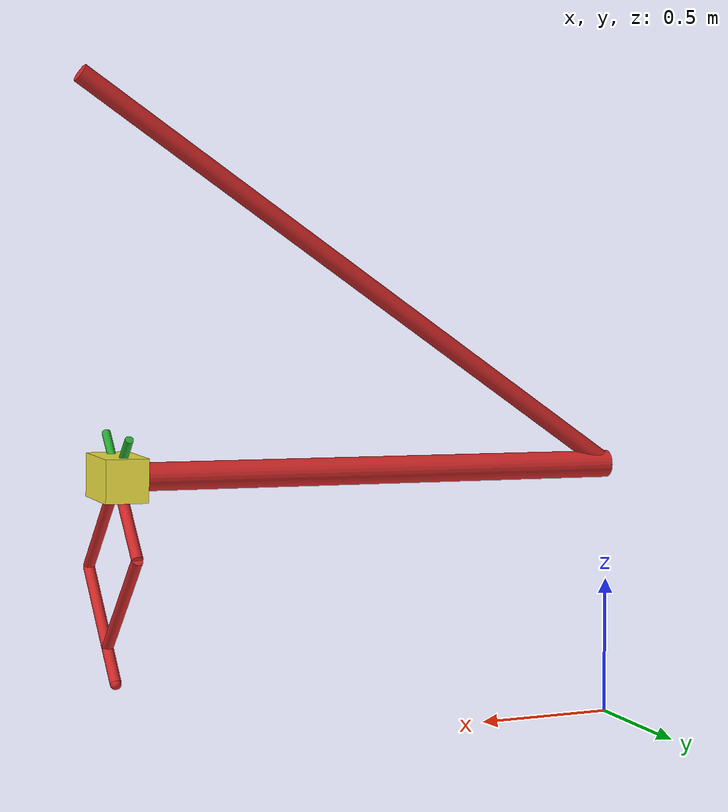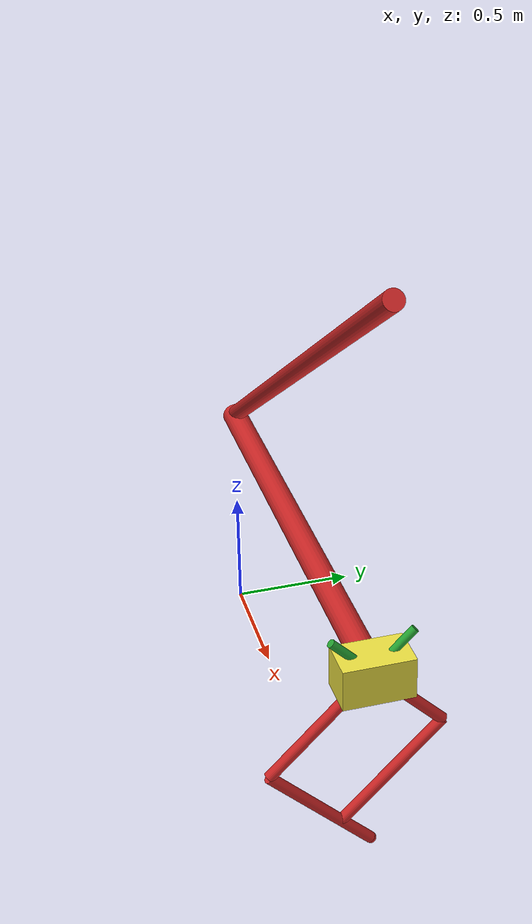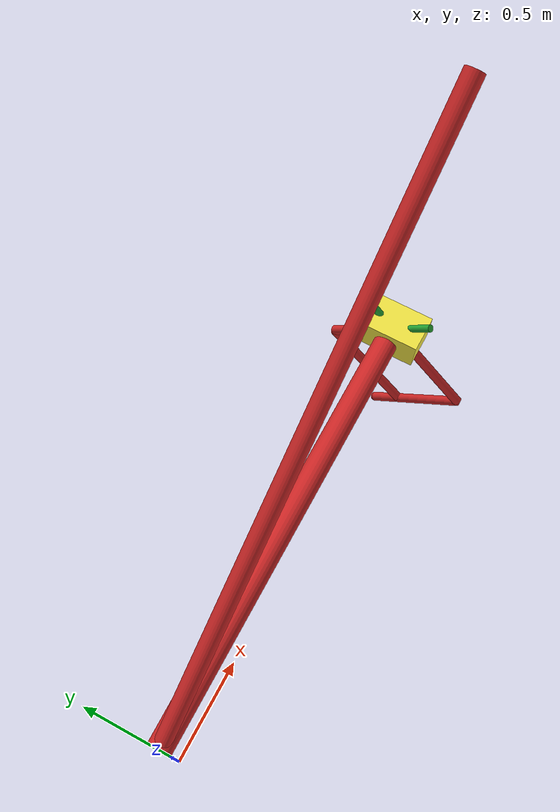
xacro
<?xml version="1.0"?>

<!-- Header File for ATRIAS 2.0 Robot Model -->
<!-- Adapted for ATRIAS 2.0 in Winter Term 2012 by Andrew Peekema and Matthew Rueben -->

<robot name="atrias"
	xmlns:sensor="http://playerstage.sourceforge.net/gazebo/xmlschema/#sensor"
	xmlns:controller="http://playerstage.sourceforge.net/gazebo/xmlschema/#controller"
	xmlns:joint="http://playerstage.sourceforge.net/gazebo/xmlschema/#slider"
	xmlns:xacro="http://www.ros.org/wiki/xacro"
	xmlns:interface="http://playerstage.sourceforge.net/gazebo/xmlschema/#interface"
	xmlns:model="http://playerstage.sourceforge.net/gazebo/xmlschema/#model"
	xmlns:geo="http://willowgarage.com/xmlschema/#geo"
	xmlns:geom="http://playerstage.sourceforge.net/gazebo/xmlschema/#geom"
	xmlns:body="http://playerstage.sourceforge.net/gazebo/xmlschema/#body" >

	<!-- Constants -->
	<property name="M_PI" value="3.14159"/>
	<property name="angle" value="${M_PI/180*1}" />
    <!-- Note: "a" is the calculated value of angle because of xacro limitations -->
	<property name="a" value="0.01745" />
	<property name="cos_a" value="${1 - a*a/2 + a*a*a*a/4/3/2 - a*a*a*a*a*a/6/5/4/3/2}" />
	<property name="sin_a" value="${a - a*a*a/3/2 + a*a*a*a*a/5/4/3/2 - a*a*a*a*a*a*a/7/6/5/4/3/2}" />

	<!-- get robot model macro -->
	<include filename="atrias20_leg.urdf.xacro" />
	<include filename="boom21.urdf.xacro" />

	<!-- constrains and builds the atrias leg model.
		NOTE: initial_pitch_angle must be inside +-25 Deg -->
	<xacro:boom21 initial_pitch_angle="${angle}" child_link="leg_hip_link1" child_offset="0.075" child_pitch="0" biped="0" />

	<xacro:atrias_leg hip_link="leg_hip_link" suffix="1" >
		<origin xyz="0 0 0.002" />	<!-- Center of rotation to center of mass   -->
		<axis>${cos_a} 0 ${sin_a}</axis>  <!-- Axis of rotation for 4-bar linkage -->
	</xacro:atrias_leg>

	<!-- initializes the all-in-one controller with the correct link names, etc. -->
	<gazebo>
		<controller:all_in_one_controller_wrapper name="all_in_one_controller_wrapper" plugin="liball_in_one_controller_wrapper.so">
			<alwaysOn> true </alwaysOn>
			<updateRate> 1000 </updateRate>
			<bodyName> leg_hip_link1 </bodyName>
			<motorAName> thighMotor_link1 </motorAName>
			<motorBName> shinMotor_link1 </motorBName>
			<legAName> thigh_link1 </legAName>
			<legBName> shin_link1 </legBName>
		</controller:all_in_one_controller_wrapper>
	</gazebo>

</robot>

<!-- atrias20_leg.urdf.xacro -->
<!-- ATRIAS 2.0 Leg Robot Model -->
<!-- Adapted for ATRIAS 2.0 in Winter Term 2012 by Andrew Peekema and Matthew Rueben -->

<robot
	xmlns:sensor="http://playerstage.sourceforge.net/gazebo/xmlschema/#sensor"
	xmlns:controller="http://playerstage.sourceforge.net/gazebo/xmlschema/#controller"
	xmlns:joint="http://playerstage.sourceforge.net/gazebo/xmlschema/#slider"
	xmlns:xacro="http://www.ros.org/wiki/xacro"
	xmlns:interface="http://playerstage.sourceforge.net/gazebo/xmlschema/#interface"
	xmlns:model="http://playerstage.sourceforge.net/gazebo/xmlschema/#model"
	xmlns:geo="http://willowgarage.com/xmlschema/#geo"
	xmlns:geom="http://playerstage.sourceforge.net/gazebo/xmlschema/#geom"
	xmlns:body="http://playerstage.sourceforge.net/gazebo/xmlschema/#body" >

	<!-- Mathematical Constants -->
	<property name="M_PI" value="3.14159"/>
	<property name="SQRT_2" value="1.41421356"/>

	<!-- Visual Parameters (no effect on physical simulation) -->
	<property name="body_size" value="0.25 0.15 0.15" />
	<property name="visual_motor_radius" value="0.015" />
	<property name="leg_segment_radius" value="0.02" />
	<property name="toe_radius" value="0.02" />
	<property name="visual_motor_length" value="0.4" />

	<!-- Leg Segment Lengths -->
	<property name="thigh_length" value="0.500" />
	<property name="shin_length" value="0.350" />
	<property name="lower_length" value="0.500" />
	<property name="fourBar_length" value="0.500" />

	<!-- Link Masses -->
	<property name="body_mass" value="11.61" />
	<property name="motor_mass" value="1.273" />
	<property name="thigh_mass" value="3.132" />
	<property name="shin_mass" value="3.137" />
	<property name="lower_mass" value="0.204" />
	<property name="fourBar_mass" value="0.166" />
	<property name="toe_mass" value="0.087" />

	<!-- Spring/Damping Coefficients -->
	<property name="spring_stiffness" value="1200" />			<!-- N*m/rad -->
	<property name="motor_damping" value="${2*0.5*34.64}" />	<!-- 2*Zeta*sqrt(K) (Guessed Zeta)-->
	<property name="motor_friction" value="10" />				<!-- Guess -->
	<property name="leg_damping" value="0" />
	<property name="leg_friction" value="0" />

	<!-- macro to use in the header file when parsed by xacro -->
	<xacro:macro name="atrias_leg" params="hip_link suffix *origin *axis" >

		<!--								Body                                     -->

		<link name="${hip_link}${suffix}">
			<inertial>
				<insert_block name="origin" />
				<mass value="${body_mass}" />
				<inertia ixx="0.0932" ixy="0.0044" ixz="-0.0019"
						 iyy="0.0833" iyz="-0.0102"
					     izz="0.0785" />
			</inertial>
			<visual>
				<origin xyz="0 0 0" rpy="0 0 0" />
				<geometry>
				  <box size="${body_size}" />
				</geometry>
			</visual>
			<collision>
				<origin xyz="0 0 0" rpy="0 0 0" />
				<geometry>
				  <box size="${body_size}" />
				</geometry>
			</collision>
		</link>
		<gazebo reference="${hip_link}${suffix}">
			<material>Gazebo/BumpyMetal</material>
		</gazebo>

		<!--								Thigh Motor                              -->

		<joint name="hip_thighMotor_joint${suffix}" type="revolute">
			<axis xyz="0 1 0" />
			<origin xyz="0 0 0" rpy="0 0 0" />
			<parent link="${hip_link}${suffix}" />
			<child link="thighMotor_link${suffix}" />
			<limit lower="${-M_PI/4-0.3054}" upper="${-M_PI/4+2.3562}" effort="1000000" velocity="1000000" />
			<dynamics damping="${motor_damping}" friction="${motor_friction}" />
		</joint>

		<link name="thighMotor_link${suffix}">
			<inertial>
				<mass value="${motor_mass}"/>
				<origin xyz="0 -0.044 0" />
				<inertia ixx="4" ixy="0" ixz="0"
				         iyy="7.25" iyz="0"
				         izz="4" />
			</inertial>
			<visual>
				<origin xyz="0 0 0" rpy="0 ${-M_PI/4} 0" />
				<geometry>
				  <cylinder length="${visual_motor_length}" radius="${visual_motor_radius}" />
				</geometry>
			</visual>
			<collision>
				<origin xyz="0 0 0" rpy="0 ${-M_PI/4} 0" />
				<geometry>
					<cylinder length="${visual_motor_length}" radius="${visual_motor_radius}" />
				</geometry>
			</collision>
		</link>

		<gazebo reference="thighMotor_link${suffix}">
			<material> Gazebo/Green </material>
		</gazebo>

		<gazebo>
			<controller:spring name="thighSpring${suffix}" plugin="libspring.so">
				<alwaysOn> true </alwaysOn>
				<updateRate> 10000 </updateRate>
				<bodyName1> thighMotor_link${suffix} </bodyName1>
				<bodyName2> thigh_link${suffix} </bodyName2>
				<rotationalStiffness> ${spring_stiffness} </rotationalStiffness>
			</controller:spring>
		</gazebo>

		<!--					Shin Motor                                           -->

		<joint name="hip_shinMotor_joint${suffix}" type="revolute">
			<axis xyz="0 1 0" />
			<origin xyz="0 0 0" rpy="0 0 0" />
			<parent link="${hip_link}${suffix}" />
			<child link="shinMotor_link${suffix}"/>
			<limit lower="${-5*M_PI/4+2.8362}" upper="${-5*M_PI/4+5.4978}" effort="10000000000000" velocity="100000000000000" />
			<dynamics damping="${motor_damping}" friction="${motor_friction}" />
		</joint>

		<link name="shinMotor_link${suffix}">
			<inertial>
				<mass value="${motor_mass}"/>
				<origin xyz="0 0.044 0" />
				<inertia ixx="4" ixy="0" ixz="0"
				         iyy="7.25" iyz="0"
				         izz="4" />
			</inertial>
			<visual>
				<origin xyz="0 0 0" rpy="0 ${M_PI/4} 0" />
				<geometry>
				  <cylinder length="${visual_motor_length}" radius="${visual_motor_radius}" />
				</geometry>
			</visual>
			<collision>
				<origin xyz="0 0 0" rpy="0 ${M_PI/4} 0" />
				<geometry>
					<cylinder length="${visual_motor_length}" radius="${visual_motor_radius}" />
				</geometry>
			</collision>
		</link>

		<gazebo reference="shinMotor_link${suffix}">
			<material>Gazebo/Green</material>
		</gazebo>

		<gazebo>
			<controller:spring name="shinSpring${suffix}" plugin="libspring.so">
				<alwaysOn> true </alwaysOn>
				<updateRate> 10000 </updateRate>
				<bodyName1> shinMotor_link${suffix} </bodyName1>
				<bodyName2> shin_link${suffix} </bodyName2>
				<rotationalStiffness> ${spring_stiffness} </rotationalStiffness>
			</controller:spring>
		</gazebo>

		<!--							 Thigh 										-->

		<joint name="body_thigh_joint${suffix}" type="continuous">
			<axis xyz="0 1 0" />
			<origin xyz="0 0 0" rpy="0 0 0" />
			<parent link="${hip_link}${suffix}" />
			<child link="thigh_link${suffix}"/>
			<!--limit lower="${-M_PI/4-0.6545}" upper="${-M_PI/4+2.7053}" effort="1000000000000" velocity="100000000000000" /-->
			<dynamics damping="${leg_damping}" friction="${leg_friction}" />
		</joint>

		<link name="thigh_link${suffix}">
			<inertial>
				<mass value="${thigh_mass}"/>
				<origin xyz="0.100 -0.020 -0.011" />
				<inertia ixx="0.0339" ixy="0.0056" ixz="-0.0179"
				         iyy="0.0688" iyz="-0.0017"
				         izz="0.0512" />
			</inertial>
			<visual>
				<origin xyz="${thigh_length/SQRT_2/2} 0 ${-thigh_length/SQRT_2/2}" rpy="0 ${-M_PI/4} 0" />
				<geometry>
				  <cylinder length="${thigh_length}" radius="${leg_segment_radius}" />
				</geometry>
			</visual>
			<collision>
				<origin xyz="${thigh_length/SQRT_2/2} 0 ${-thigh_length/SQRT_2/2}" rpy="0 ${-M_PI/4} 0" />
				<geometry>
					<cylinder length="${thigh_length}" radius="${leg_segment_radius}" />
				</geometry>
			</collision>
		</link>

		<gazebo reference="thigh_link${suffix}">
			<material>Gazebo/Red</material>
		</gazebo>

		<!--							 Shin 			 							-->

		<joint name="body_shin_joint${suffix}" type="continuous">
			<axis xyz="0 1 0" />
			<origin xyz="0 0 0" rpy="0 0 0" />
			<parent link="${hip_link}${suffix}" />
			<child link="shin_link${suffix}"/>
			<!--limit lower="${-5*M_PI/4+2.4871}" upper="${-5*M_PI/4+5.4978}" effort="100000000000" velocity="100000000000000" /-->
			<dynamics damping="${leg_damping}" friction="${leg_friction}" />
		</joint>

		<link name="shin_link${suffix}">
			<inertial>
				<mass value="${shin_mass}"/>
				<origin xyz="-0.0979 0.0200 -0.0081" />
				<inertia ixx="0.0309" ixy="0.0054" ixz="0.0154"
				         iyy="0.0637" iyz="0.0014"
				         izz="0.0493" />
			</inertial>
			<visual>
				<origin xyz="${-shin_length/SQRT_2/2} 0 ${-shin_length/SQRT_2/2}" rpy="0 ${M_PI/4} 0" />
				<geometry>
				  <cylinder length="${shin_length}" radius="${leg_segment_radius}" />
				</geometry>
			</visual>
			<collision>
				<origin xyz="${-shin_length/SQRT_2/2} 0 ${-shin_length/SQRT_2/2}" rpy="0 ${M_PI/4} 0" />
				<geometry>
					<cylinder length="${shin_length}" radius="${leg_segment_radius}" />
				</geometry>
			</collision>
		</link>

		<gazebo reference="shin_link${suffix}">
			<material>Gazebo/Red</material>
		</gazebo>

		<!--								 Lower Link					 			-->

		<joint name="thigh_lower_joint${suffix}" type="continuous">
			<axis xyz="0 1 0" />
			<origin xyz="${thigh_length/SQRT_2} 0 ${-thigh_length/SQRT_2}" rpy="0 0 0" />
			<parent link="thigh_link${suffix}" />
			<child link="lower_link${suffix}"/>
			<limit lower="${-M_PI/2}" upper="${M_PI/2}" effort="10000000000000" velocity="100000000000000" />
			<dynamics damping="${leg_damping}" friction="${leg_friction}" />
		</joint>

		<link name="lower_link${suffix}">
			<inertial>
				<mass value="${lower_mass}"/>
				<origin xyz="-0.127 0 -0.141" />
				<inertia ixx="0.0027" ixy="0" ixz="0.0026"
				         iyy="0.0054" iyz="0"
				         izz="0.0028" />
			</inertial>
			<visual>
				<origin xyz="${-lower_length/SQRT_2/2} 0 ${-lower_length/SQRT_2/2}" rpy="0 ${M_PI/4} 0" />
				<geometry>
				  <cylinder length="${lower_length}" radius="${leg_segment_radius}" />
				</geometry>
			</visual>
			<collision>
				<origin xyz="${-lower_length/SQRT_2/2} 0 ${-lower_length/SQRT_2/2}" rpy="0 ${M_PI/4} 0" />
				<geometry>
					<cylinder length="${lower_length}" radius="${leg_segment_radius}" />
				</geometry>
			</collision>
		</link>

		<gazebo reference="lower_link${suffix}">
			<material>Gazebo/Red</material>
		</gazebo>

		<!--								 Four Bar	 							-->

		<joint name="shin_fourBar_joint${suffix}" type="continuous">
			<axis xyz="0 1 0" />
			<origin xyz="${-shin_length/SQRT_2} 0 ${-shin_length/SQRT_2}" rpy="0 0 0" />
			<parent link="shin_link${suffix}" />
			<child link="fourBar_link${suffix}"/>
			<limit lower="${-M_PI/2}" upper="${M_PI/2}" effort="10000000000000" velocity="100000000000000" />
			<dynamics damping="${leg_damping}" friction="${leg_friction}" />
		</joint>

		<link name="fourBar_link${suffix}">
			<inertial>
				<mass value="${fourBar_mass}"/>
				<origin xyz="0.1633 0 -0.1633" />
				<inertia ixx="0.0033" ixy="0" ixz="-0.0032"
				         iyy="0.0063" iyz="0"
				         izz="0.0033" />
			</inertial>
			<visual>
				<origin xyz="${fourBar_length/SQRT_2/2} 0 ${-fourBar_length/SQRT_2/2}" rpy="0 ${-M_PI/4} 0" />
				<geometry>
				  <cylinder length="${fourBar_length}" radius="${leg_segment_radius}" />
				</geometry>
			</visual>
			<collision>
				<origin xyz="${fourBar_length/SQRT_2/2} 0 ${-fourBar_length/SQRT_2/2}" rpy="0 ${-M_PI/4} 0" />
				<geometry>
					<cylinder length="${fourBar_length}" radius="${leg_segment_radius}" />
				</geometry>
			</collision>
		</link>

		<gazebo reference="fourBar_link${suffix}">
			<material>Gazebo/Red</material>
		</gazebo>

		<!--							Four Bar Linkage Joint						-->

		<gazebo>
			<joint:hinge name="lower_fourBar_joint${suffix}">
				<body1>lower_link${suffix}</body1>
				<body2>fourBar_link${suffix}</body2>
				<anchor>lower_link${suffix}</anchor>
				<insert_block name="axis" />
				<anchorOffset>${-(lower_length-0.15)/SQRT_2} 0 ${-(lower_length-0.15)/SQRT_2}</anchorOffset>
			</joint:hinge>
		</gazebo>

		<!--							Toe											-->

		<joint name="lower_toe_joint${suffix}" type="continuous">
			<axis xyz="1 0 0" />
			<origin xyz="${-fourBar_length/SQRT_2} 0 ${-fourBar_length/SQRT_2}" rpy="0 0 0" />
			<parent link="lower_link${suffix}" />
			<child link="toe_link${suffix}"/>
		</joint>

		<link name="toe_link${suffix}">
			<inertial>
				<mass value="${toe_mass}"/>
				<origin xyz="0 0 0" />
				<inertia ixx="0.0000001" ixy="0" ixz="0"
				         iyy="0.0000001" iyz="0"
				         izz="0.0000001" />
			</inertial>
			<visual>
				<origin xyz="0 0 0" rpy="0 0 0" />
				<geometry>
				  <sphere radius="${toe_radius}" />
				</geometry>
			</visual>
			<collision>
				<origin xyz="0 0 0" rpy="0 0 0" />
				<geometry>
					<sphere radius="${toe_radius}" />
				</geometry>
			</collision>
		</link>

		<gazebo reference="toe_link${suffix}">
			<material>Gazebo/Red</material>
		</gazebo>

	</xacro:macro>

</robot>

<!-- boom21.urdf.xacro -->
<robot
	xmlns:sensor="http://playerstage.sourceforge.net/gazebo/xmlschema/#sensor"
	xmlns:controller="http://playerstage.sourceforge.net/gazebo/xmlschema/#controller"
	xmlns:joint="http://playerstage.sourceforge.net/gazebo/xmlschema/#slider"
	xmlns:xacro="http://www.ros.org/wiki/xacro"
	xmlns:interface="http://playerstage.sourceforge.net/gazebo/xmlschema/#interface"
	xmlns:model="http://playerstage.sourceforge.net/gazebo/xmlschema/#model"
	xmlns:geo="http://willowgarage.com/xmlschema/#geo"
	xmlns:geom="http://playerstage.sourceforge.net/gazebo/xmlschema/#geom"
	xmlns:body="http://playerstage.sourceforge.net/gazebo/xmlschema/#body" >

	<!-- Constants -->
	<property name="M_PI" value="3.14159"/>
	<property name="SQRT_2" value="1.41421356"/>

	<!-- Physical Properties -->
	<property name="upright_length" value="0.93" />
	<property name="yaw_length" value="2.4" />
	<property name="pitch_length" value="1.795" />

	<property name="yaw_mass" value="14.19014" />
	<property name="pitch_mass" value="2.66782" />

	<!-- Visual Properties -->
	<property name="yaw_radius" value="0.034" />
	<property name="pitch_radius" value="0.049" />

	<xacro:macro name="boom21" params="initial_pitch_angle child_link child_offset child_pitch biped">

		<link name="world" />

		<!--				 			Yaw											-->

		<joint name="upright_yaw_joint" type="continuous">
			<axis xyz="0 1 0" />
			<origin xyz="0 0 ${upright_length}" rpy="${M_PI/2} 0 0" />	<!-- x along boom, y upwards -->
			<parent link="world" />
			<child link="yaw_link"/>
		</joint>

		<link name="yaw_link">
			<inertial>
				<mass value="${yaw_mass}"/>
				<origin xyz="0.15069 0.0007 -0.00561" />
				<inertia ixx="3.7013" ixy="2.3205" ixz="0.0103"
				         iyy="2.7884" iyz="0.0229"
				         izz="6.2744" />
			</inertial>
		<visual>
				<origin xyz="1 0.7 0" rpy="0 ${M_PI/2} 0.6107" />
				<geometry>
				  <cylinder length="${yaw_length}" radius="${yaw_radius}" />
				</geometry>
			</visual>
			<collision>
				<origin xyz="1 0.7 0" rpy="0 ${M_PI/2} 0.6107" />
				<geometry>
					<cylinder length="${yaw_length}" radius="${yaw_radius}" />
				</geometry>
			</collision>
		</link>

		<gazebo reference="yaw_link">
			<material>Gazebo/Red</material>
		</gazebo>

		<!--				 			Pitch                                    -->

		<joint name="yaw_pitch_joint" type="continuous">
			<axis xyz="0 0 1" />
			<origin xyz="0 0 0" rpy="0 0 ${initial_pitch_angle}" />
			<limit lower="${-M_PI/180*25}" upper="${M_PI/180*25}" effort="100000" velocity="100000" />
			<parent link="yaw_link" />
			<child link="pitch_link"/>
		</joint>

		<link name="pitch_link">
			<inertial>
				<mass value="${pitch_mass}"/>
				<origin xyz="1.09153 0.00637 0.0" />
				<inertia ixx="0.0069" ixy="0.0111" ixz="0.0"
				         iyy="0.9699" iyz="0.0"
				         izz="0.9712" />
			</inertial>
		<visual>
				<origin xyz="${pitch_length/2} 0 0" rpy="0 ${M_PI/2} 0" />
				<geometry>
				  <cylinder length="${pitch_length}" radius="${pitch_radius}" />
				</geometry>
			</visual>
			<collision>
				<origin xyz="${pitch_length/2} 0 0" rpy="0 ${M_PI/2} 0" />
				<geometry>
					<cylinder length="${pitch_length}" radius="${pitch_radius}" />
				</geometry>
			</collision>
		</link>

		<gazebo reference="pitch_link">
			<material>Gazebo/Red</material>
		</gazebo>

		<!--				 			Roll Joint                                   -->

		<joint name="pitch_roll_joint" type="continuous">
			<axis xyz="0 1 0" />
			<origin xyz="${pitch_length + child_offset} ${-0.08*biped} 0" rpy="${-M_PI/2*biped} ${-M_PI/2 + M_PI/2*biped} ${-M_PI/2 + M_PI/2*biped + child_pitch}" />
			<parent link="pitch_link" />
			<child link="${child_link}"/>
		</joint>

	</xacro:macro>

</robot>
